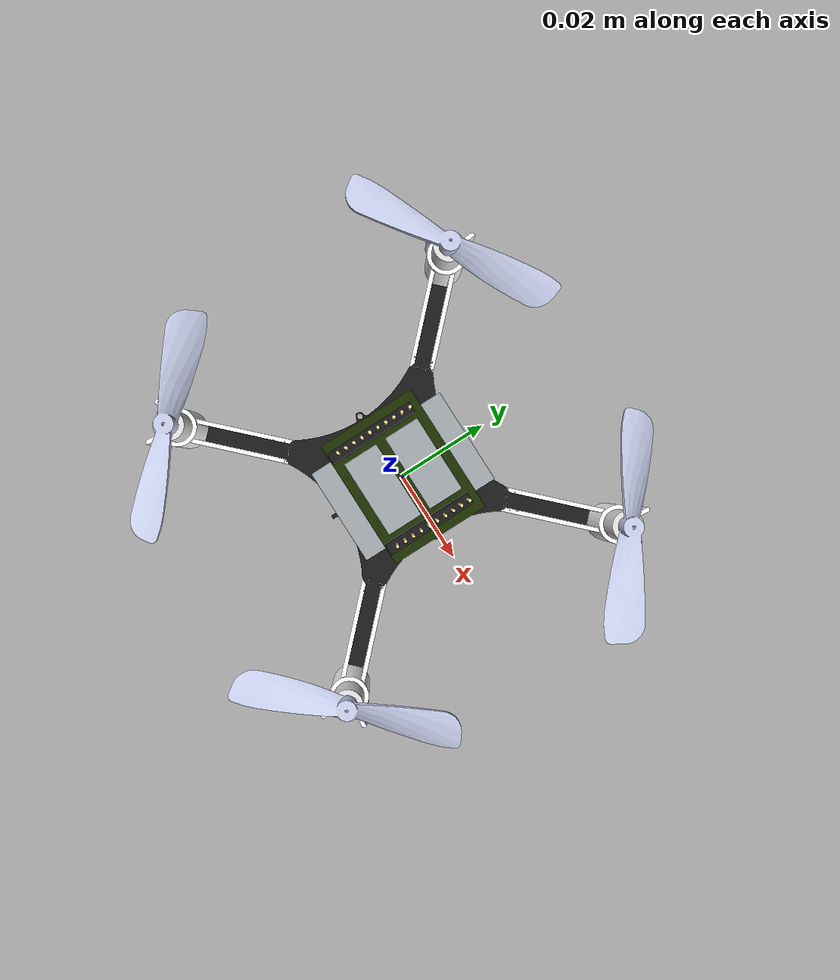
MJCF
<mujoco model="cf2">
  <default>
    <default class="visual">
      <geom group="2" type="mesh" contype="0" conaffinity="0"/>
    </default>
    <default class="collision">
      <geom group="3" type="mesh"/>
    </default>
  </default>
  <asset>
    <material name="Material10-polished_plastic1_001" specular="0.5" shininess="0.225" rgba="0.631373 0.658824 0.678431 1.000000"/>
    <material name="Material12-polished_gold_001" specular="0.5" shininess="0.225" rgba="0.968627 0.878431 0.600000 1.000000"/>
    <material name="Material14-green_medium_gloss_plastic_001" specular="0.5" shininess="0.225" rgba="0.109804 0.184314 0.000000 1.000000"/>
    <material name="Material15_001" specular="0.5" shininess="0.225" rgba="0.792157 0.819608 0.933333 1.000000"/>
    <material name="Material3-polypropylene2_001" specular="0.5" shininess="0.225" rgba="1.000000 1.000000 1.000000 1.000000"/>
    <material name="Material6-black_medium_gloss_plastic_001" specular="0.5" shininess="0.225" rgba="0.101961 0.101961 0.101961 1.000000"/>
    <material name="Material8-burnished_chrome_001" specular="0.5" shininess="0.225" rgba="0.898039 0.898039 0.898039 1.000000"/>
    <mesh file="cf2_0.obj"/>
    <mesh file="cf2_1.obj"/>
    <mesh file="cf2_2.obj"/>
    <mesh file="cf2_3.obj"/>
    <mesh file="cf2_4.obj"/>
    <mesh file="cf2_5.obj"/>
    <mesh file="cf2_6.obj"/>
    <mesh file="cf2_collision_0.obj"/>
    <mesh file="cf2_collision_1.obj"/>
    <mesh file="cf2_collision_2.obj"/>
    <mesh file="cf2_collision_3.obj"/>
    <mesh file="cf2_collision_4.obj"/>
    <mesh file="cf2_collision_5.obj"/>
    <mesh file="cf2_collision_6.obj"/>
    <mesh file="cf2_collision_7.obj"/>
    <mesh file="cf2_collision_8.obj"/>
    <mesh file="cf2_collision_9.obj"/>
    <mesh file="cf2_collision_10.obj"/>
    <mesh file="cf2_collision_11.obj"/>
    <mesh file="cf2_collision_12.obj"/>
    <mesh file="cf2_collision_13.obj"/>
    <mesh file="cf2_collision_14.obj"/>
    <mesh file="cf2_collision_15.obj"/>
    <mesh file="cf2_collision_16.obj"/>
    <mesh file="cf2_collision_17.obj"/>
    <mesh file="cf2_collision_18.obj"/>
    <mesh file="cf2_collision_19.obj"/>
    <mesh file="cf2_collision_20.obj"/>
    <mesh file="cf2_collision_21.obj"/>
    <mesh file="cf2_collision_22.obj"/>
    <mesh file="cf2_collision_23.obj"/>
    <mesh file="cf2_collision_24.obj"/>
    <mesh file="cf2_collision_25.obj"/>
    <mesh file="cf2_collision_26.obj"/>
    <mesh file="cf2_collision_27.obj"/>
    <mesh file="cf2_collision_28.obj"/>
    <mesh file="cf2_collision_29.obj"/>
    <mesh file="cf2_collision_30.obj"/>
    <mesh file="cf2_collision_31.obj"/>
  </asset>
  <worldbody>
    <body name="cf2">
      <geom mesh="cf2_0" material="Material15_001" class="visual"/>
      <geom mesh="cf2_1" material="Material14-green_medium_gloss_plastic_001" class="visual"/>
      <geom mesh="cf2_2" material="Material12-polished_gold_001" class="visual"/>
      <geom mesh="cf2_3" material="Material10-polished_plastic1_001" class="visual"/>
      <geom mesh="cf2_4" material="Material8-burnished_chrome_001" class="visual"/>
      <geom mesh="cf2_5" material="Material6-black_medium_gloss_plastic_001" class="visual"/>
      <geom mesh="cf2_6" material="Material3-polypropylene2_001" class="visual"/>
      <geom mesh="cf2_collision_0" class="collision"/>
      <geom mesh="cf2_collision_1" class="collision"/>
      <geom mesh="cf2_collision_2" class="collision"/>
      <geom mesh="cf2_collision_3" class="collision"/>
      <geom mesh="cf2_collision_4" class="collision"/>
      <geom mesh="cf2_collision_5" class="collision"/>
      <geom mesh="cf2_collision_6" class="collision"/>
      <geom mesh="cf2_collision_7" class="collision"/>
      <geom mesh="cf2_collision_8" class="collision"/>
      <geom mesh="cf2_collision_9" class="collision"/>
      <geom mesh="cf2_collision_10" class="collision"/>
      <geom mesh="cf2_collision_11" class="collision"/>
      <geom mesh="cf2_collision_12" class="collision"/>
      <geom mesh="cf2_collision_13" class="collision"/>
      <geom mesh="cf2_collision_14" class="collision"/>
      <geom mesh="cf2_collision_15" class="collision"/>
      <geom mesh="cf2_collision_16" class="collision"/>
      <geom mesh="cf2_collision_17" class="collision"/>
      <geom mesh="cf2_collision_18" class="collision"/>
      <geom mesh="cf2_collision_19" class="collision"/>
      <geom mesh="cf2_collision_20" class="collision"/>
      <geom mesh="cf2_collision_21" class="collision"/>
      <geom mesh="cf2_collision_22" class="collision"/>
      <geom mesh="cf2_collision_23" class="collision"/>
      <geom mesh="cf2_collision_24" class="collision"/>
      <geom mesh="cf2_collision_25" class="collision"/>
      <geom mesh="cf2_collision_26" class="collision"/>
      <geom mesh="cf2_collision_27" class="collision"/>
      <geom mesh="cf2_collision_28" class="collision"/>
      <geom mesh="cf2_collision_29" class="collision"/>
      <geom mesh="cf2_collision_30" class="collision"/>
      <geom mesh="cf2_collision_31" class="collision"/>
    </body>
  </worldbody>
</mujoco>
